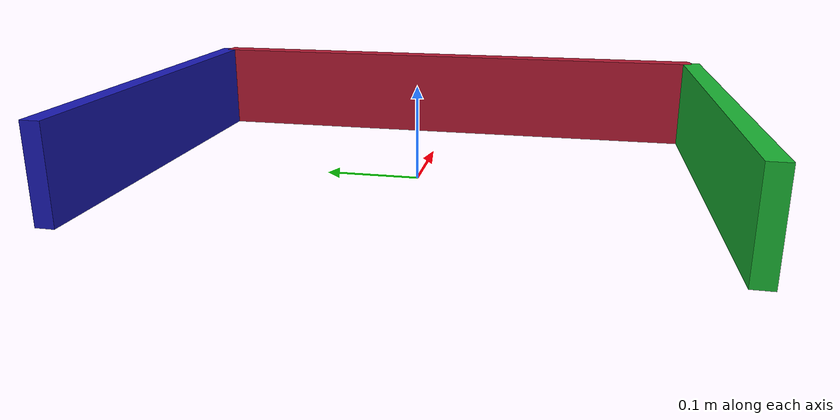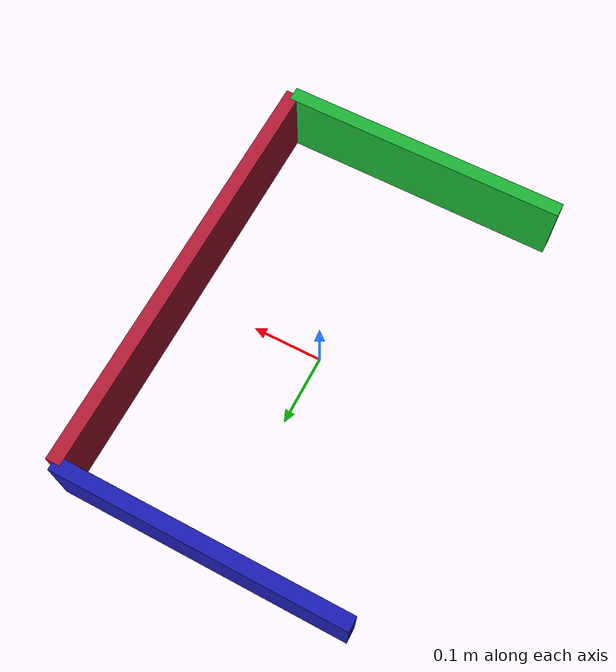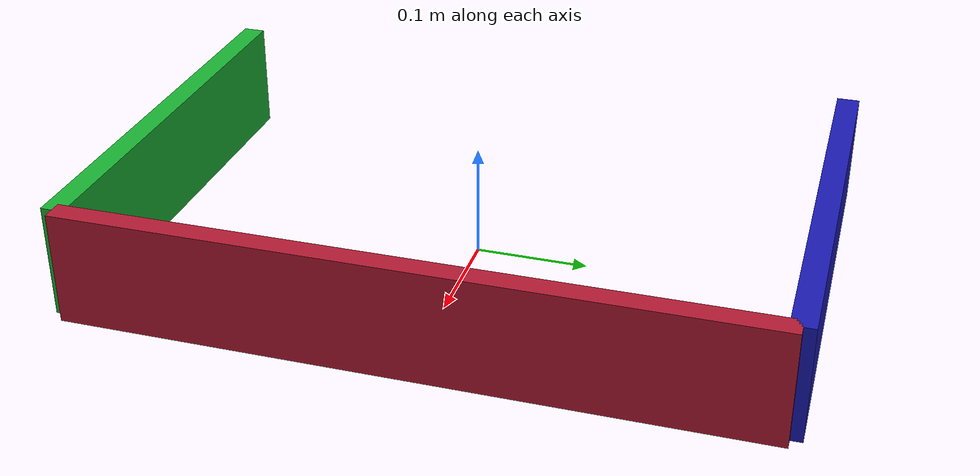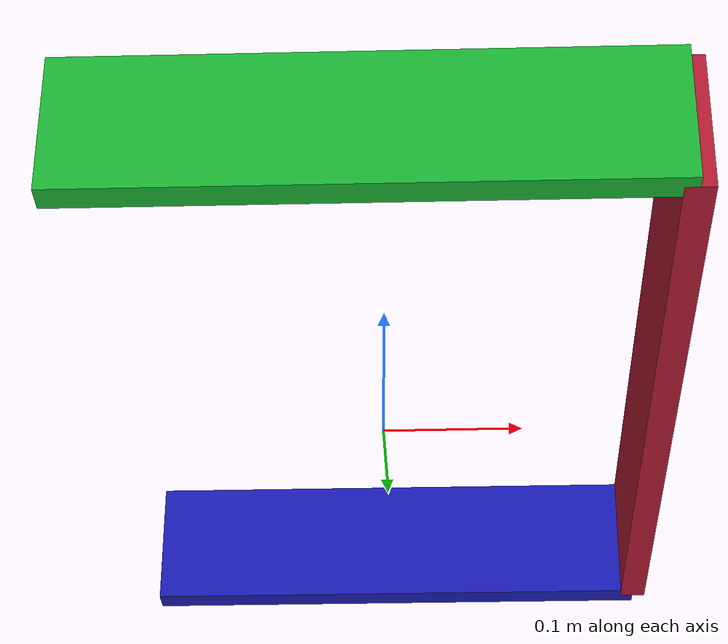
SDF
<?xml version='1.0'?>
<sdf version="1.4">
  <model name="box">
    <pose>0 0 0.0 0 0 0</pose>
    <static>false</static>
    <link name="link">
      <inertial>
        <mass>0.001</mass>
        <inertia> <!-- inertias are tricky to compute -->
          <!-- http://gazebosim.org/tutorials?tut=inertia&cat=build_robot -->
          <ixx>0.083</ixx>       <!-- for a box: ixx = 0.083 * mass * (y*y + z*z) -->
          <ixy>0.0</ixy>         <!-- for a box: ixy = 0 -->
          <ixz>0.0</ixz>         <!-- for a box: ixz = 0 -->
          <iyy>0.083</iyy>       <!-- for a box: iyy = 0.083 * mass * (x*x + z*z) -->
          <iyz>0.0</iyz>         <!-- for a box: iyz = 0 -->
          <izz>0.083</izz>       <!-- for a box: izz = 0.083 * mass * (x*x + y*y) -->
        </inertia>
      </inertial>
      <collision name="collision_1">
        <pose>0 -0.3 0.05 0 0 0</pose>
        <geometry>
          <box>
            <size>0.40 0.02 0.10</size>
          </box>
        </geometry>
      </collision>
      <collision name="collision_2">
        <pose>0 0.3 0.05 0 0 0</pose>
        <geometry>
          <box>
            <size>0.40 0.02 0.10</size>
          </box>
        </geometry>
      </collision>
      <visual name="visual_1">
	<pose>0 0.3 0.05 0 0 0</pose>
        <geometry>
          <box>
            <size>0.40 0.02 0.10</size>
          </box>
        </geometry>
	<material>
          <ambient>0.1 0.1 0.0.7 1</ambient>
          <diffuse>0.1 0.1 0.7 1</diffuse>
          <specular>0 0 0 0</specular>
          <emissive>0 0 0 1</emissive>
        </material>
      </visual>
      <visual name="visual_2">
	<pose>0 -0.3 0.05 0 0 0</pose>
        <geometry>
          <box>
            <size>0.40 0.02 0.10</size>
          </box>
        </geometry>
	<material>
          <ambient>0.1 0.7 0.1 1</ambient>
          <diffuse>0.1 0.7 0.2 1</diffuse>
          <specular>0 0 0 0</specular>
          <emissive>0 0 0 1</emissive>
        </material>
      </visual>
      <visual name="visual_3">
	<pose>0.2 0 0.05 0 0 0</pose>
        <geometry>
          <box>
            <size>0.02 0.6 0.10</size>
          </box>
        </geometry>
	<material>
          <ambient>0.7 0.1 0.1 1</ambient>
          <diffuse>0.7 0.1 0.2 1</diffuse>
          <specular>0 0 0 0</specular>
          <emissive>0 0 0 1</emissive>
        </material>
      </visual>
    </link>
  </model>
</sdf>
